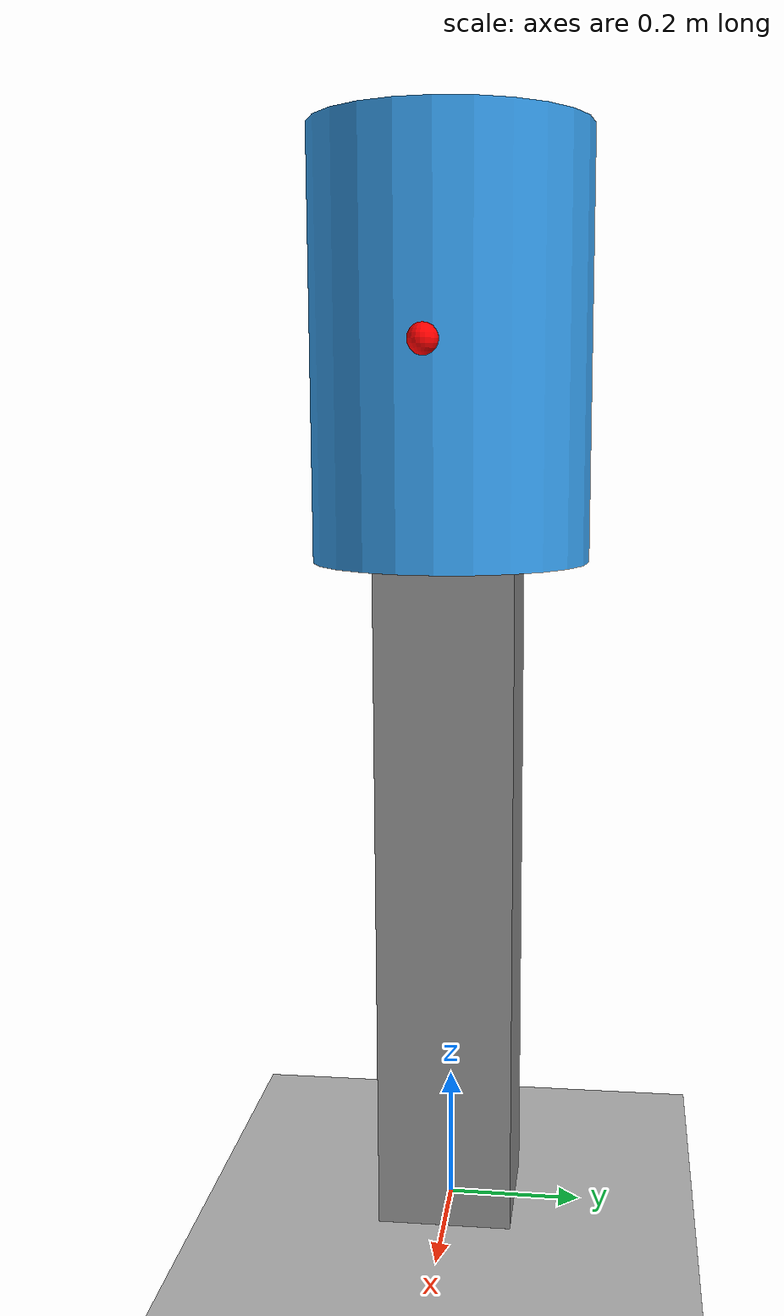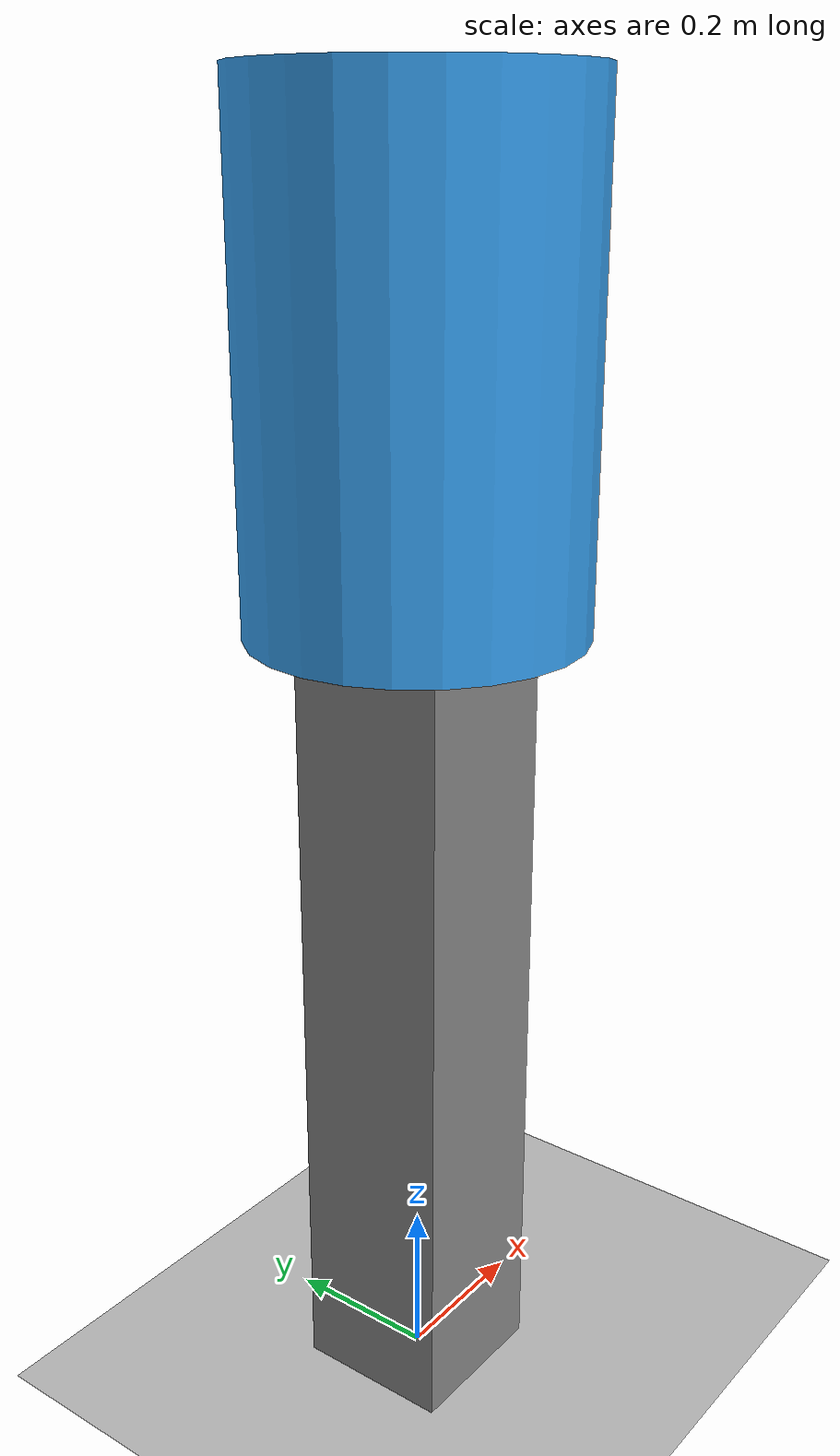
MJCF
<?xml version='1.0' encoding='utf-8'?>
<mujoco model="rotating_cylinder">
  <compiler angle="radian" />
  <!-- 使用RK4积分器更稳定，减少数值误差 -->
  <option timestep="0.002" iterations="10" ls_iterations="10" integrator="RK4"/>

  <!-- 默认设置 -->
  <default>
    <geom rgba="0.7 0.7 0.7 1" />
    <!-- 大幅增加阻尼以减少抖动 -->
    <joint damping="0.1" armature="0.01" frictionloss="0.1"/>
  </default>

  <!-- 世界体 -->
  <worldbody>
    <!-- 地面 -->
    <geom name="floor" type="plane" size="2 2 0.1" rgba="0.8 0.8 0.8 1" />

    <!-- 光源 -->
    <light name="light1" pos="0 0 3" dir="0 0 -1" />

    <!-- 基座（固定） -->
    <body name="base" pos="0 0 0.5">
      <geom name="base_geom" type="box" size="0.1 0.1 0.5" rgba="0.5 0.5 0.5 1" />

      <!-- 旋转关节和圆柱体 -->
      <body name="rotating_body" pos="0 0 0.8">
        <!-- 惯性属性：质量、质心位置、惯性矩阵 -->
        <inertial
          pos="0 0 0"
          quat="1 0 0 0"
          mass="2.0"
          diaginertia="0.08 0.08 0.04" />

        <!-- 旋转关节：绕 Z 轴旋转 -->
        <joint name="rotation_joint" pos="0 0 0" axis="0 0 1"  actuatorfrcrange="-100 100"/>

        <!-- 圆柱体 -->
        <geom name="cylinder" type="cylinder" size="0.2 0.3" rgba="0.2 0.6 0.9 1" />

        <!-- 可选：添加一个可视化标记来显示旋转 -->
        <site name="marker" pos="0.3 0 0" size="0.02" rgba="1 0 0 1" />
      </body>
    </body>
  </worldbody>

  <!-- 执行器：驱动旋转关节 -->
  <actuator>
    <!-- 使用MuJoCo内置的位置控制执行器（推荐）- 内部已优化，更稳定 -->

    <!-- 速度控制执行器 -->
    <velocity name="rotation_velocity" joint="rotation_joint" kv="10" forcerange="-100 100" />

    <!-- 可选：力矩控制执行器（用于手动PD控制） -->
  </actuator>

  <!-- 传感器：可选，用于监控关节状态 -->
  <sensor>
    <jointpos name="joint_position" joint="rotation_joint" />
    <jointvel name="joint_velocity" joint="rotation_joint" />
  </sensor>
</mujoco>
